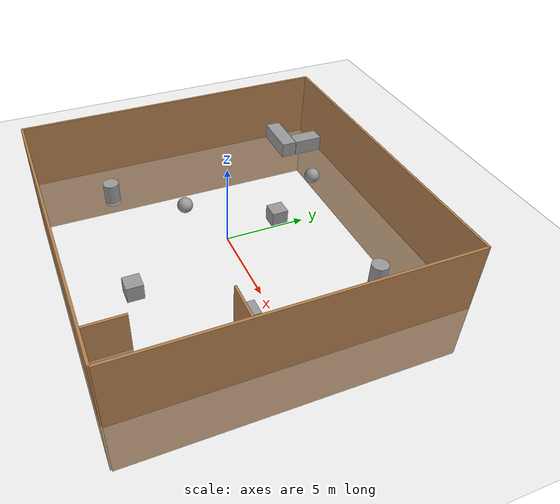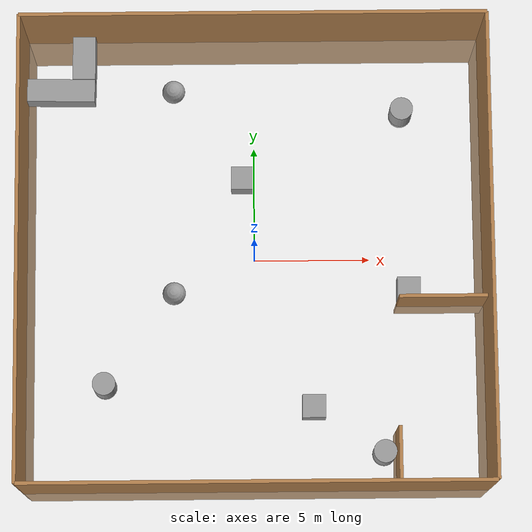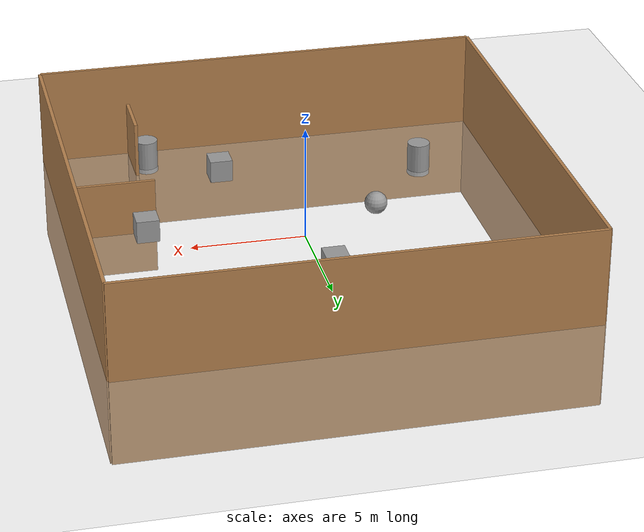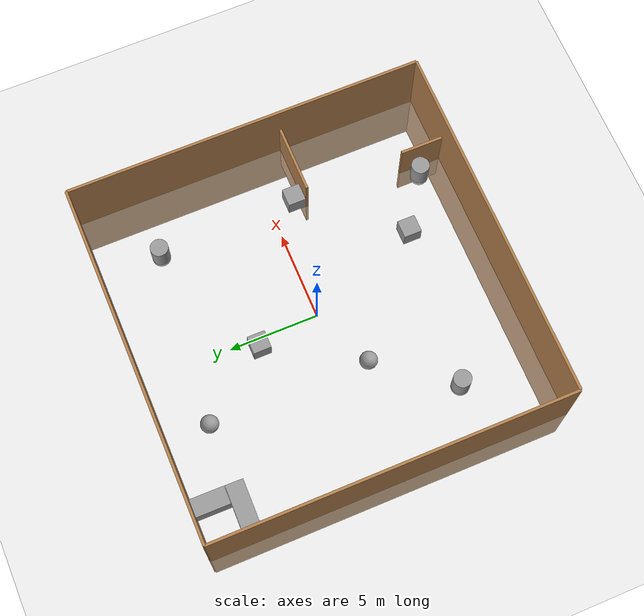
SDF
<sdf version="1.6">
 <world name="default">
  <light name="sun" type="directional">
   <pose>0 0 10 0 -0 0</pose>
   <diffuse>0.8 0.8 0.8 1</diffuse>
   <specular>0.2 0.2 0.2 1</specular>
   <attenuation>
    <range>1000</range>
    <constant>0.9</constant>
    <linear>0.01</linear>
    <quadratic>0.001</quadratic>
   </attenuation>
   <direction>-0.5 0.1 -0.9</direction>
  </light>
  <model name="ground_plane">
   <static>1</static>
   <link name="link">
    <collision name="collision">
     <geometry><plane><normal>0 0 1</normal><size>100 100</size></plane></geometry>
     <surface>
      <contact><collide_bitmask>65535</collide_bitmask></contact>
      <friction><ode><mu>100</mu><mu2>50</mu2></ode></friction>
     </surface>
    </collision>
    <visual name="visual">
     <cast_shadows>0</cast_shadows>
     <geometry><plane><normal>0 0 1</normal><size>100 100</size></plane></geometry>
     <material>
      <script><uri>file://media/materials/scripts/gazebo.material</uri><name>Gazebo/Grey</name></script>
     </material>
    </visual>
   </link>
  </model>
  <model name="unit_box_0_0">
   <pose>-8.42323 7.50376 0.499998 3e-06 -0 -0.016718</pose>
   <link name="link">
    <inertial>
     <mass>1</mass>
     <inertia>
      <ixx>0.166667</ixx>
      <ixy>0</ixy>
      <ixz>0</ixz>
      <iyy>0.166667</iyy>
      <iyz>0</iyz>
      <izz>0.166667</izz>
     </inertia>
    </inertial>
    <collision name="collision"><geometry><box><size>2.96568 1 1</size></box></geometry></collision>
    <visual name="visual">
     <geometry><box><size>2.96568 1 1</size></box></geometry>
     <material>
      <script><name>Gazebo/Grey</name><uri>file://media/materials/scripts/gazebo.material</uri></script>
     </material>
    </visual>
   </link>
  </model>
  <gravity>0 0 -9.8</gravity>
  <magnetic_field>6e-06 2.3e-05 -4.2e-05</magnetic_field>
  <atmosphere type="adiabatic"/>
  <physics name="default_physics" default="0" type="ode">
   <max_step_size>0.001</max_step_size>
   <real_time_factor>1</real_time_factor>
   <real_time_update_rate>1000</real_time_update_rate>
  </physics>
  <scene><ambient>0.4 0.4 0.4 1</ambient><background>0.7 0.7 0.7 1</background><shadows>1</shadows></scene>
  <audio><device>default</device></audio>
  <spherical_coordinates>
   <surface_model>EARTH_WGS84</surface_model>
   <latitude_deg>0</latitude_deg>
   <longitude_deg>0</longitude_deg>
   <elevation>0</elevation>
   <heading_deg>0</heading_deg>
  </spherical_coordinates>
  <model name="turtlebot3_square">
   <link name="Wall_0">
    <pose>0 10 0 0 -0 0</pose>
    <inertial>
     <mass>80.6884</mass>
     <inertia><ixx>436.432</ixx><ixy>0</ixy><ixz>0</ixz><iyy>3135.13</iyy><iyz>0</iyz><izz>2699</izz></inertia>
    </inertial>
    <visual name="Wall_0_Visual">
     <pose>0 0 0.25 0 -0 0</pose>
     <geometry><box><size>20.0343 0.15 8.05505</size></box></geometry>
     <material>
      <script><uri>file://media/materials/scripts/gazebo.material</uri><name>Gazebo/Wood</name></script>
      <ambient>1 1 1 1</ambient>
      <shader type="vertex"><normal_map>__default__</normal_map></shader>
      <diffuse>1 1 1 1</diffuse>
      <specular>0.2 0.2 0.2 1</specular>
      <emissive>0 0 0 1</emissive>
     </material>
    </visual>
    <collision name="Wall_0_Collision">
     <pose>0 0 0.25 0 -0 0</pose>
     <geometry><box><size>20.0343 0.15 8.05505</size></box></geometry>
     <surface>
      <friction>
       <ode><mu>1</mu><mu2>1</mu2><fdir1>0 0 0</fdir1><slip1>0</slip1><slip2>0</slip2></ode>
       <torsional>
        <coefficient>1</coefficient>
        <patch_radius>0</patch_radius>
        <surface_radius>0</surface_radius>
        <use_patch_radius>1</use_patch_radius>
        <ode><slip>0</slip></ode>
       </torsional>
      </friction>
      <bounce><restitution_coefficient>0</restitution_coefficient><threshold>1e+06</threshold></bounce>
      <contact>
       <collide_without_contact>0</collide_without_contact>
       <collide_without_contact_bitmask>1</collide_without_contact_bitmask>
       <collide_bitmask>1</collide_bitmask>
       <ode>
        <soft_cfm>0</soft_cfm>
        <soft_erp>0.2</soft_erp>
        <kp>1e+13</kp>
        <kd>1</kd>
        <max_vel>0.01</max_vel>
        <min_depth>0</min_depth>
       </ode>
       <bullet>
        <split_impulse>1</split_impulse>
        <split_impulse_penetration_threshold>-0.01</split_impulse_penetration_threshold>
        <soft_cfm>0</soft_cfm>
        <soft_erp>0.2</soft_erp>
        <kp>1e+13</kp>
        <kd>1</kd>
       </bullet>
      </contact>
     </surface>
    </collision>
   </link>
   <link name="Wall_2">
    <pose>-10 0 0 0 0 -1.5708</pose>
    <inertial>
     <inertia><ixx>0</ixx><ixy>0</ixy><ixz>0</ixz><iyy>0</iyy><iyz>0</iyz><izz>0</izz></inertia>
     <mass>0</mass>
    </inertial>
    <visual name="Wall_2_Visual">
     <pose>0 0 0.25 0 -0 0</pose>
     <geometry><box><size>20.0239 0.15 8.04733</size></box></geometry>
     <material>
      <script><uri>file://media/materials/scripts/gazebo.material</uri><name>Gazebo/Wood</name></script>
      <ambient>1 1 1 1</ambient>
      <shader type="vertex"><normal_map>__default__</normal_map></shader>
      <diffuse>1 1 1 1</diffuse>
      <specular>0.2 0.2 0.2 1</specular>
      <emissive>0 0 0 1</emissive>
     </material>
    </visual>
    <collision name="Wall_2_Collision">
     <pose>0 0 0.25 0 -0 0</pose>
     <geometry><box><size>20.0239 0.15 8.04733</size></box></geometry>
     <surface>
      <friction>
       <ode><mu>1</mu><mu2>1</mu2><fdir1>0 0 0</fdir1><slip1>0</slip1><slip2>0</slip2></ode>
       <torsional>
        <coefficient>1</coefficient>
        <patch_radius>0</patch_radius>
        <surface_radius>0</surface_radius>
        <use_patch_radius>1</use_patch_radius>
        <ode><slip>0</slip></ode>
       </torsional>
      </friction>
      <bounce><restitution_coefficient>0</restitution_coefficient><threshold>1e+06</threshold></bounce>
      <contact>
       <collide_without_contact>0</collide_without_contact>
       <collide_without_contact_bitmask>1</collide_without_contact_bitmask>
       <collide_bitmask>1</collide_bitmask>
       <ode>
        <soft_cfm>0</soft_cfm>
        <soft_erp>0.2</soft_erp>
        <kp>1e+13</kp>
        <kd>1</kd>
        <max_vel>0.01</max_vel>
        <min_depth>0</min_depth>
       </ode>
       <bullet>
        <split_impulse>1</split_impulse>
        <split_impulse_penetration_threshold>-0.01</split_impulse_penetration_threshold>
        <soft_cfm>0</soft_cfm>
        <soft_erp>0.2</soft_erp>
        <kp>1e+13</kp>
        <kd>1</kd>
       </bullet>
      </contact>
     </surface>
    </collision>
   </link>
   <link name="Wall_3">
    <pose>0 -10 0 0 -0 0</pose>
    <inertial>
     <inertia><ixx>0</ixx><ixy>0</ixy><ixz>0</ixz><iyy>0</iyy><iyz>0</iyz><izz>0</izz></inertia>
     <mass>0</mass>
    </inertial>
    <visual name="Wall_3_Visual">
     <pose>0 0 0.25 0 -0 0</pose>
     <geometry><box><size>19.957 0.15 8.07772</size></box></geometry>
     <material>
      <script><uri>file://media/materials/scripts/gazebo.material</uri><name>Gazebo/Wood</name></script>
      <ambient>1 1 1 1</ambient>
      <shader type="vertex"><normal_map>__default__</normal_map></shader>
      <diffuse>1 1 1 1</diffuse>
      <specular>0.2 0.2 0.2 1</specular>
      <emissive>0 0 0 1</emissive>
     </material>
    </visual>
    <collision name="Wall_3_Collision">
     <pose>0 0 0.25 0 -0 0</pose>
     <geometry><box><size>19.957 0.15 8.07772</size></box></geometry>
     <surface>
      <friction>
       <ode><mu>1</mu><mu2>1</mu2><fdir1>0 0 0</fdir1><slip1>0</slip1><slip2>0</slip2></ode>
       <torsional>
        <coefficient>1</coefficient>
        <patch_radius>0</patch_radius>
        <surface_radius>0</surface_radius>
        <use_patch_radius>1</use_patch_radius>
        <ode><slip>0</slip></ode>
       </torsional>
      </friction>
      <bounce><restitution_coefficient>0</restitution_coefficient><threshold>1e+06</threshold></bounce>
      <contact>
       <collide_without_contact>0</collide_without_contact>
       <collide_without_contact_bitmask>1</collide_without_contact_bitmask>
       <collide_bitmask>1</collide_bitmask>
       <ode>
        <soft_cfm>0</soft_cfm>
        <soft_erp>0.2</soft_erp>
        <kp>1e+13</kp>
        <kd>1</kd>
        <max_vel>0.01</max_vel>
        <min_depth>0</min_depth>
       </ode>
       <bullet>
        <split_impulse>1</split_impulse>
        <split_impulse_penetration_threshold>-0.01</split_impulse_penetration_threshold>
        <soft_cfm>0</soft_cfm>
        <soft_erp>0.2</soft_erp>
        <kp>1e+13</kp>
        <kd>1</kd>
       </bullet>
      </contact>
     </surface>
    </collision>
   </link>
   <link name="Wall_3_clone">
    <pose>8.05609 -1.99223 0 0 -0 0</pose>
    <inertial>
     <inertia><ixx>0</ixx><ixy>0</ixy><ixz>0</ixz><iyy>0</iyy><iyz>0</iyz><izz>0</izz></inertia>
     <mass>0</mass>
    </inertial>
    <visual name="Wall_3_Visual">
     <pose>0 0 0.25 0 -0 0</pose>
     <geometry><box><size>3.80828 0.15 4.33301</size></box></geometry>
     <material>
      <script><uri>file://media/materials/scripts/gazebo.material</uri><name>Gazebo/Wood</name></script>
      <ambient>1 1 1 1</ambient>
      <shader type="vertex"><normal_map>__default__</normal_map></shader>
      <diffuse>1 1 1 1</diffuse>
      <specular>0.2 0.2 0.2 1</specular>
      <emissive>0 0 0 1</emissive>
     </material>
    </visual>
    <collision name="Wall_3_Collision">
     <pose>0 0 0.25 0 -0 0</pose>
     <geometry><box><size>3.80828 0.15 4.33301</size></box></geometry>
     <surface>
      <friction>
       <ode><mu>1</mu><mu2>1</mu2><fdir1>0 0 0</fdir1><slip1>0</slip1><slip2>0</slip2></ode>
       <torsional>
        <coefficient>1</coefficient>
        <patch_radius>0</patch_radius>
        <surface_radius>0</surface_radius>
        <use_patch_radius>1</use_patch_radius>
        <ode><slip>0</slip></ode>
       </torsional>
      </friction>
      <bounce><restitution_coefficient>0</restitution_coefficient><threshold>1e+06</threshold></bounce>
      <contact>
       <collide_without_contact>0</collide_without_contact>
       <collide_without_contact_bitmask>1</collide_without_contact_bitmask>
       <collide_bitmask>1</collide_bitmask>
       <ode>
        <soft_cfm>0</soft_cfm>
        <soft_erp>0.2</soft_erp>
        <kp>1e+13</kp>
        <kd>1</kd>
        <max_vel>0.01</max_vel>
        <min_depth>0</min_depth>
       </ode>
       <bullet>
        <split_impulse>1</split_impulse>
        <split_impulse_penetration_threshold>-0.01</split_impulse_penetration_threshold>
        <soft_cfm>0</soft_cfm>
        <soft_erp>0.2</soft_erp>
        <kp>1e+13</kp>
        <kd>1</kd>
       </bullet>
      </contact>
     </surface>
    </collision>
   </link>
   <link name="Wall_4">
    <pose>10 0 0 0 -0 1.5708</pose>
    <inertial>
     <mass>80.3784</mass>
     <inertia><ixx>434.631</ixx><ixy>0</ixy><ixz>0</ixz><iyy>3103.13</iyy><iyz>0</iyz><izz>2668.8</izz></inertia>
    </inertial>
    <visual name="Wall_4_Visual">
     <pose>0 0 0.25 0 -0 0</pose>
     <geometry><box><size>19.9603 0.15 8.0539</size></box></geometry>
     <material>
      <script><uri>file://media/materials/scripts/gazebo.material</uri><name>Gazebo/Wood</name></script>
      <ambient>1 1 1 1</ambient>
      <shader type="vertex"><normal_map>__default__</normal_map></shader>
      <diffuse>1 1 1 1</diffuse>
      <specular>0.2 0.2 0.2 1</specular>
      <emissive>0 0 0 1</emissive>
     </material>
    </visual>
    <collision name="Wall_4_Collision">
     <pose>0 0 0.25 0 -0 0</pose>
     <geometry><box><size>19.9603 0.15 8.0539</size></box></geometry>
     <surface>
      <friction>
       <ode><mu>1</mu><mu2>1</mu2><fdir1>0 0 0</fdir1><slip1>0</slip1><slip2>0</slip2></ode>
       <torsional>
        <coefficient>1</coefficient>
        <patch_radius>0</patch_radius>
        <surface_radius>0</surface_radius>
        <use_patch_radius>1</use_patch_radius>
        <ode><slip>0</slip></ode>
       </torsional>
      </friction>
      <bounce><restitution_coefficient>0</restitution_coefficient><threshold>1e+06</threshold></bounce>
      <contact>
       <collide_without_contact>0</collide_without_contact>
       <collide_without_contact_bitmask>1</collide_without_contact_bitmask>
       <collide_bitmask>1</collide_bitmask>
       <ode>
        <soft_cfm>0</soft_cfm>
        <soft_erp>0.2</soft_erp>
        <kp>1e+13</kp>
        <kd>1</kd>
        <max_vel>0.01</max_vel>
        <min_depth>0</min_depth>
       </ode>
       <bullet>
        <split_impulse>1</split_impulse>
        <split_impulse_penetration_threshold>-0.01</split_impulse_penetration_threshold>
        <soft_cfm>0</soft_cfm>
        <soft_erp>0.2</soft_erp>
        <kp>1e+13</kp>
        <kd>1</kd>
       </bullet>
      </contact>
     </surface>
    </collision>
   </link>
   <link name="Wall_4_clone">
    <pose>6.09188 -8.7062 0 0 -0 1.5708</pose>
    <inertial>
     <mass>5.26565</mass>
     <inertia><ixx>8.64084</ixx><ixy>0</ixy><ixz>0</ixz><iyy>11.105</iyy><iyz>0</iyz><izz>2.48394</izz></inertia>
    </inertial>
    <visual name="Wall_4_Visual">
     <pose>0 0 0.25 0 -0 0</pose>
     <geometry><box><size>2.37449 0.15 4.43501</size></box></geometry>
     <material>
      <script><uri>file://media/materials/scripts/gazebo.material</uri><name>Gazebo/Wood</name></script>
      <ambient>1 1 1 1</ambient>
      <shader type="vertex"><normal_map>__default__</normal_map></shader>
      <diffuse>1 1 1 1</diffuse>
      <specular>0.2 0.2 0.2 1</specular>
      <emissive>0 0 0 1</emissive>
     </material>
    </visual>
    <collision name="Wall_4_Collision">
     <pose>0 0 0.25 0 -0 0</pose>
     <geometry><box><size>2.37449 0.15 4.43501</size></box></geometry>
     <surface>
      <friction>
       <ode><mu>1</mu><mu2>1</mu2><fdir1>0 0 0</fdir1><slip1>0</slip1><slip2>0</slip2></ode>
       <torsional>
        <coefficient>1</coefficient>
        <patch_radius>0</patch_radius>
        <surface_radius>0</surface_radius>
        <use_patch_radius>1</use_patch_radius>
        <ode><slip>0</slip></ode>
       </torsional>
      </friction>
      <bounce><restitution_coefficient>0</restitution_coefficient><threshold>1e+06</threshold></bounce>
      <contact>
       <collide_without_contact>0</collide_without_contact>
       <collide_without_contact_bitmask>1</collide_without_contact_bitmask>
       <collide_bitmask>1</collide_bitmask>
       <ode>
        <soft_cfm>0</soft_cfm>
        <soft_erp>0.2</soft_erp>
        <kp>1e+13</kp>
        <kd>1</kd>
        <max_vel>0.01</max_vel>
        <min_depth>0</min_depth>
       </ode>
       <bullet>
        <split_impulse>1</split_impulse>
        <split_impulse_penetration_threshold>-0.01</split_impulse_penetration_threshold>
        <soft_cfm>0</soft_cfm>
        <soft_erp>0.2</soft_erp>
        <kp>1e+13</kp>
        <kd>1</kd>
       </bullet>
      </contact>
     </surface>
    </collision>
   </link>
   <static>1</static>
  </model>
  <model name="unit_box">
   <pose>-7.4176 8.96009 0.5 0 0 -0.008161</pose>
   <link name="link">
    <inertial>
     <mass>1</mass>
     <inertia>
      <ixx>0.166667</ixx>
      <ixy>0</ixy>
      <ixz>0</ixz>
      <iyy>0.166667</iyy>
      <iyz>0</iyz>
      <izz>0.166667</izz>
     </inertia>
    </inertial>
    <collision name="collision"><geometry><box><size>1 1.9133 1</size></box></geometry></collision>
    <visual name="visual">
     <geometry><box><size>1 1.9133 1</size></box></geometry>
     <material>
      <script><name>Gazebo/Grey</name><uri>file://media/materials/scripts/gazebo.material</uri></script>
     </material>
    </visual>
   </link>
  </model>
  <model name="pillars">
   <link name="link">
    <inertial>
     <mass>1</mass>
     <inertia><ixx>0.145833</ixx><ixy>0</ixy><ixz>0</ixz><iyy>0.145833</iyy><iyz>0</iyz><izz>0.125</izz></inertia>
    </inertial>
    <visual name="visual">
     <geometry><cylinder><radius>0.5</radius><length>1.5</length></cylinder></geometry>
     <material>
      <script><name>Gazebo/Grey</name><uri>file://media/materials/scripts/gazebo.material</uri></script>
      <shader type="vertex"><normal_map>__default__</normal_map></shader>
      <ambient>0.3 0.3 0.3 1</ambient>
      <diffuse>0.7 0.7 0.7 1</diffuse>
      <specular>0.01 0.01 0.01 1</specular>
      <emissive>0 0 0 1</emissive>
     </material>
    </visual>
    <collision name="collision">
     <geometry><cylinder><radius>0.05</radius><length>1</length></cylinder></geometry>
     <surface>
      <friction>
       <ode><mu>1</mu><mu2>1</mu2><fdir1>0 0 0</fdir1><slip1>0</slip1><slip2>0</slip2></ode>
       <torsional>
        <coefficient>1</coefficient>
        <patch_radius>0</patch_radius>
        <surface_radius>0</surface_radius>
        <use_patch_radius>1</use_patch_radius>
        <ode><slip>0</slip></ode>
       </torsional>
      </friction>
      <bounce><restitution_coefficient>0</restitution_coefficient><threshold>1e+06</threshold></bounce>
      <contact>
       <collide_without_contact>0</collide_without_contact>
       <collide_without_contact_bitmask>1</collide_without_contact_bitmask>
       <collide_bitmask>1</collide_bitmask>
       <ode>
        <soft_cfm>0</soft_cfm>
        <soft_erp>0.2</soft_erp>
        <kp>1e+13</kp>
        <kd>1</kd>
        <max_vel>0.01</max_vel>
        <min_depth>0</min_depth>
       </ode>
       <bullet>
        <split_impulse>1</split_impulse>
        <split_impulse_penetration_threshold>-0.01</split_impulse_penetration_threshold>
        <soft_cfm>0</soft_cfm>
        <soft_erp>0.2</soft_erp>
        <kp>1e+13</kp>
        <kd>1</kd>
       </bullet>
      </contact>
     </surface>
    </collision>
   </link>
   <static>0</static>
   <pose>-6.5 -5.5 0.5 -1e-06 -0 0.000145</pose>
  </model>
  <model name="pillars_clone">
   <link name="link">
    <inertial>
     <mass>1</mass>
     <inertia><ixx>0.145833</ixx><ixy>0</ixy><ixz>0</ixz><iyy>0.145833</iyy><iyz>0</iyz><izz>0.125</izz></inertia>
    </inertial>
    <visual name="visual">
     <geometry><cylinder><radius>0.5</radius><length>1.5</length></cylinder></geometry>
     <material>
      <script><name>Gazebo/Grey</name><uri>file://media/materials/scripts/gazebo.material</uri></script>
      <shader type="vertex"><normal_map>__default__</normal_map></shader>
      <ambient>0.3 0.3 0.3 1</ambient>
      <diffuse>0.7 0.7 0.7 1</diffuse>
      <specular>0.01 0.01 0.01 1</specular>
      <emissive>0 0 0 1</emissive>
     </material>
    </visual>
    <collision name="collision">
     <geometry><cylinder><radius>0.05</radius><length>1</length></cylinder></geometry>
     <surface>
      <friction>
       <ode><mu>1</mu><mu2>1</mu2><fdir1>0 0 0</fdir1><slip1>0</slip1><slip2>0</slip2></ode>
       <torsional>
        <coefficient>1</coefficient>
        <patch_radius>0</patch_radius>
        <surface_radius>0</surface_radius>
        <use_patch_radius>1</use_patch_radius>
        <ode><slip>0</slip></ode>
       </torsional>
      </friction>
      <bounce><restitution_coefficient>0</restitution_coefficient><threshold>1e+06</threshold></bounce>
      <contact>
       <collide_without_contact>0</collide_without_contact>
       <collide_without_contact_bitmask>1</collide_without_contact_bitmask>
       <collide_bitmask>1</collide_bitmask>
       <ode>
        <soft_cfm>0</soft_cfm>
        <soft_erp>0.2</soft_erp>
        <kp>1e+13</kp>
        <kd>1</kd>
        <max_vel>0.01</max_vel>
        <min_depth>0</min_depth>
       </ode>
       <bullet>
        <split_impulse>1</split_impulse>
        <split_impulse_penetration_threshold>-0.01</split_impulse_penetration_threshold>
        <soft_cfm>0</soft_cfm>
        <soft_erp>0.2</soft_erp>
        <kp>1e+13</kp>
        <kd>1</kd>
       </bullet>
      </contact>
     </surface>
    </collision>
   </link>
   <static>0</static>
   <pose>6.46449 6.501 0.49999 0 -0 0.000158</pose>
  </model>
  <model name="unit_box_0">
   <pose>6.66058 -1.41723 0.5 -0 -0 -3e-06</pose>
   <link name="link">
    <inertial>
     <mass>1</mass>
     <inertia>
      <ixx>0.166667</ixx>
      <ixy>0</ixy>
      <ixz>0</ixz>
      <iyy>0.166667</iyy>
      <iyz>0</iyz>
      <izz>0.166667</izz>
     </inertia>
    </inertial>
    <collision name="collision"><geometry><box><size>1 1 1</size></box></geometry></collision>
    <visual name="visual">
     <geometry><box><size>1 1 1</size></box></geometry>
     <material>
      <script><name>Gazebo/Grey</name><uri>file://media/materials/scripts/gazebo.material</uri></script>
     </material>
    </visual>
   </link>
  </model>
  <model name="pillars_clone_clone">
   <link name="link">
    <inertial>
     <mass>1</mass>
     <inertia><ixx>0.145833</ixx><ixy>0</ixy><ixz>0</ixz><iyy>0.145833</iyy><iyz>0</iyz><izz>0.125</izz></inertia>
    </inertial>
    <visual name="visual">
     <geometry><cylinder><radius>0.5</radius><length>1.5</length></cylinder></geometry>
     <material>
      <script><name>Gazebo/Grey</name><uri>file://media/materials/scripts/gazebo.material</uri></script>
      <shader type="vertex"><normal_map>__default__</normal_map></shader>
      <ambient>0.3 0.3 0.3 1</ambient>
      <diffuse>0.7 0.7 0.7 1</diffuse>
      <specular>0.01 0.01 0.01 1</specular>
      <emissive>0 0 0 1</emissive>
     </material>
    </visual>
    <collision name="collision">
     <geometry><cylinder><radius>0.05</radius><length>1</length></cylinder></geometry>
     <surface>
      <friction>
       <ode><mu>1</mu><mu2>1</mu2><fdir1>0 0 0</fdir1><slip1>0</slip1><slip2>0</slip2></ode>
       <torsional>
        <coefficient>1</coefficient>
        <patch_radius>0</patch_radius>
        <surface_radius>0</surface_radius>
        <use_patch_radius>1</use_patch_radius>
        <ode><slip>0</slip></ode>
       </torsional>
      </friction>
      <bounce><restitution_coefficient>0</restitution_coefficient><threshold>1e+06</threshold></bounce>
      <contact>
       <collide_without_contact>0</collide_without_contact>
       <collide_without_contact_bitmask>1</collide_without_contact_bitmask>
       <collide_bitmask>1</collide_bitmask>
       <ode>
        <soft_cfm>0</soft_cfm>
        <soft_erp>0.2</soft_erp>
        <kp>1e+13</kp>
        <kd>1</kd>
        <max_vel>0.01</max_vel>
        <min_depth>0</min_depth>
       </ode>
       <bullet>
        <split_impulse>1</split_impulse>
        <split_impulse_penetration_threshold>-0.01</split_impulse_penetration_threshold>
        <soft_cfm>0</soft_cfm>
        <soft_erp>0.2</soft_erp>
        <kp>1e+13</kp>
        <kd>1</kd>
       </bullet>
      </contact>
     </surface>
    </collision>
   </link>
   <static>0</static>
   <pose>5.50851 -8.48041 0.5 -1e-06 -0 0.000286</pose>
  </model>
  <model name="unit_sphere">
   <pose>-3.50116 7.50288 0.5 0 -0 0</pose>
   <link name="link">
    <inertial>
     <mass>1</mass>
     <inertia><ixx>0.1</ixx><ixy>0</ixy><ixz>0</ixz><iyy>0.1</iyy><iyz>0</iyz><izz>0.1</izz></inertia>
    </inertial>
    <collision name="collision"><geometry><sphere><radius>0.5</radius></sphere></geometry></collision>
    <visual name="visual">
     <geometry><sphere><radius>0.5</radius></sphere></geometry>
     <material>
      <script><name>Gazebo/Grey</name><uri>file://media/materials/scripts/gazebo.material</uri></script>
     </material>
    </visual>
   </link>
  </model>
  <model name="unit_sphere_0">
   <pose>-3.49667 -1.49861 0.5 0 -0 0</pose>
   <link name="link">
    <inertial>
     <mass>1</mass>
     <inertia><ixx>0.1</ixx><ixy>0</ixy><ixz>0</ixz><iyy>0.1</iyy><iyz>0</iyz><izz>0.1</izz></inertia>
    </inertial>
    <collision name="collision"><geometry><sphere><radius>0.5</radius></sphere></geometry></collision>
    <visual name="visual">
     <geometry><sphere><radius>0.5</radius></sphere></geometry>
     <material>
      <script><name>Gazebo/Grey</name><uri>file://media/materials/scripts/gazebo.material</uri></script>
     </material>
    </visual>
   </link>
  </model>
  <model name="unit_box_1">
   <pose>-0.490037 3.50633 0.5 0 -0 5e-06</pose>
   <link name="link">
    <inertial>
     <mass>1</mass>
     <inertia>
      <ixx>0.166667</ixx>
      <ixy>0</ixy>
      <ixz>0</ixz>
      <iyy>0.166667</iyy>
      <iyz>0</iyz>
      <izz>0.166667</izz>
     </inertia>
    </inertial>
    <collision name="collision"><geometry><box><size>1 1 1</size></box></geometry></collision>
    <visual name="visual">
     <geometry><box><size>1 1 1</size></box></geometry>
     <material>
      <script><name>Gazebo/Grey</name><uri>file://media/materials/scripts/gazebo.material</uri></script>
     </material>
    </visual>
   </link>
  </model>
  <model name="unit_box_2">
   <pose>2.50401 -6.49481 0.5 0 -0 0</pose>
   <link name="link">
    <inertial>
     <mass>1</mass>
     <inertia>
      <ixx>0.166667</ixx>
      <ixy>0</ixy>
      <ixz>0</ixz>
      <iyy>0.166667</iyy>
      <iyz>0</iyz>
      <izz>0.166667</izz>
     </inertia>
    </inertial>
    <collision name="collision"><geometry><box><size>1 1 1</size></box></geometry></collision>
    <visual name="visual">
     <geometry><box><size>1 1 1</size></box></geometry>
     <material>
      <script><name>Gazebo/Grey</name><uri>file://media/materials/scripts/gazebo.material</uri></script>
     </material>
    </visual>
   </link>
  </model>
 </world>
</sdf>
